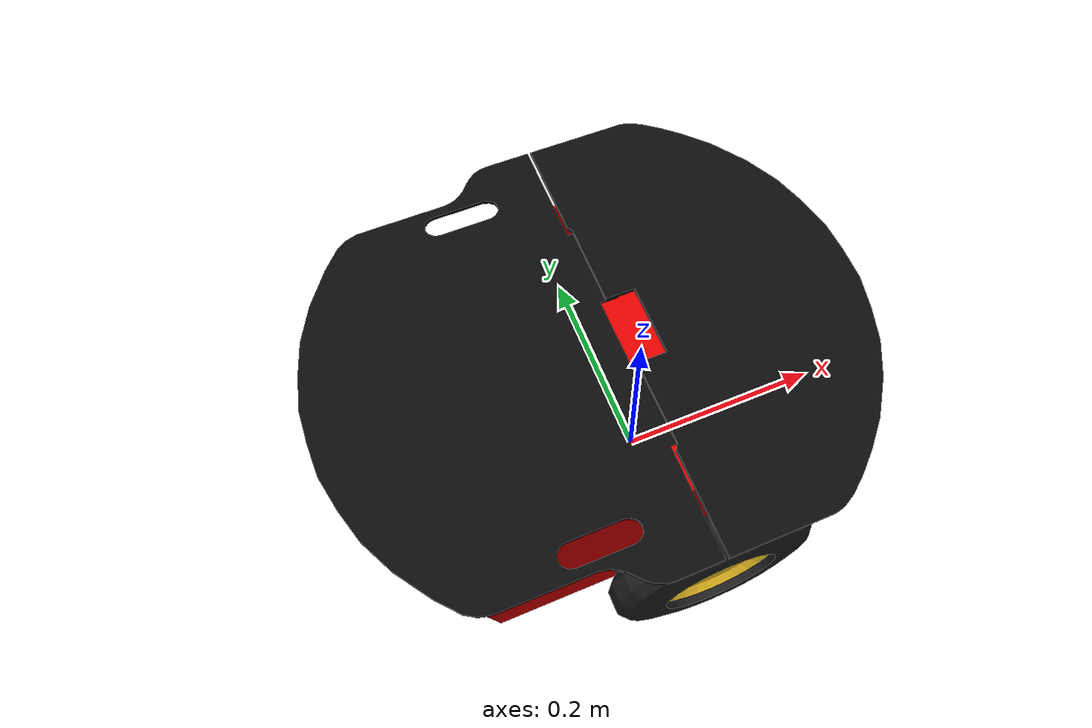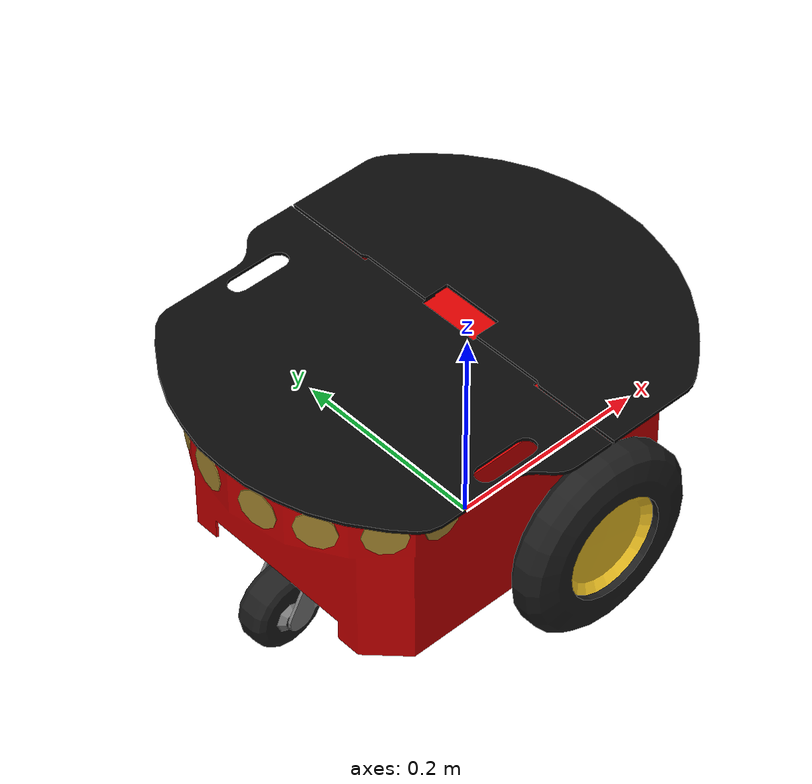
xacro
<?xml version="1.0"?>
<robot name="pioneer2dx" xmlns:xacro="http://ros.org/wiki/xacro">

  <xacro:property name="M_PI" value="3.14159265358979"/>
  <xacro:property name="laser_z" value="0.07"/>

  <xacro:include filename="$(find tuw_bringup)/config/robot_description/pioneer2dx/body.xacro"/>
</robot>

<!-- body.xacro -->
<robot xmlns:xacro="http://ros.org/wiki/xacro">

  <xacro:include filename="$(find tuw_bringup)/config/robot_description/pioneer2dx/wheel.xacro"/>

  <material name="ChassisRed"  ><color rgba="0.851 0.0 0.0 1.0"/></material>
  <material name="TopBlack"    ><color rgba="0.038 0.038 0.038 1.0"/></material>
  <material name="Swivel"      ><color rgba="0.5 0.5 0.5 1.0"/></material>
  <material name="WheelBlack"  ><color rgba="0.117 0.117 0.117 1.0"/></material>
  <material name="HubcapYellow"><color rgba="1.0 0.811 0.151 1.0"/></material>
  <material name="SonarYellow" ><color rgba="0.715 0.583 0.210 1.0"/></material>

  <link name="base_link">
    <inertial>
      <mass value="20.0"/>
      <origin xyz="-0.045 0 0.148"/>
      <inertia ixx="0.3338" ixy="0.0" ixz="0.0"
               iyy="0.4783" iyz="0.0"
               izz="0.3338"/>
    </inertial>
    <visual>
      <origin xyz="-0.045 0 0.148" rpy="0 0 0"/>
      <geometry>
        <mesh filename="package://tuw_bringup/config/robot_description/pioneer2dx/meshes/chassis.stl"/>
      </geometry>
      <material name="ChassisRed"/>
    </visual>
    <collision>
      <origin xyz="-0.045 0 0.148" rpy="0 0 0"/>
      <geometry>
        <box size="0.4 0.28 0.17"/>
      </geometry>
    </collision>
  </link>

  <link name="base_footprint"/>
  <joint name="base_footprint_joint" type="fixed">
    <origin xyz="0 0 0" rpy="0 0 0"/>
    <parent link="base_link"/>
    <child  link="base_footprint"/>
  </joint>

  <link name="top_plate">
    <inertial>
      <mass value="0.01"/>
      <origin xyz="0 0 0"/>
      <inertia ixx="1" ixy="0" ixz="0" iyy="1" iyz="0" izz="1"/>
    </inertial>
    <visual>
      <origin xyz="0 0 0" rpy="0 0 0"/>
      <geometry>
        <mesh filename="package://tuw_bringup/config/robot_description/pioneer2dx/meshes/top.stl"/>
      </geometry>
      <material name="TopBlack"/>
    </visual>
  </link>
  <joint name="base_top_joint" type="fixed">
    <origin xyz="-0.045 0 0.24" rpy="0 0 0"/>
    <parent link="base_link"/>
    <child  link="top_plate"/>
  </joint>

  <link name="swivel">
    <inertial>
      <mass value="0.1"/>
      <origin xyz="0 0 0"/>
      <inertia ixx="0.01" ixy="0" ixz="0" iyy="0.01" iyz="0" izz="0.01"/>
    </inertial>
    <visual>
      <origin xyz="0 0 0" rpy="0 0 0"/>
      <geometry>
        <mesh filename="package://tuw_bringup/config/robot_description/pioneer2dx/meshes/swivel.stl"/>
      </geometry>
      <material name="Swivel"/>
    </visual>
  </link>
  <joint name="base_swivel_joint" type="continuous">
    <origin xyz="-0.185 0 0.055" rpy="0 0 0"/>
    <axis xyz="0 0 1"/>
    <limit effort="100" velocity="100"/>
    <joint_properties damping="0.0" friction="0.0"/>
    <parent link="base_link"/>
    <child  link="swivel"/>
  </joint>

  <link name="center_wheel">
    <inertial>
      <mass value="0.1"/>
      <origin xyz="0 0 0"/>
      <inertia ixx="0.012411765597" ixy="0" ixz="0"
               iyy="0.015218160428" iyz="0"
               izz="0.011763977943"/>
    </inertial>
    <visual>
      <origin xyz="0 0 0" rpy="0 0 0"/>
      <geometry>
        <mesh filename="package://tuw_bringup/config/robot_description/pioneer2dx/meshes/center_wheel.stl"/>
      </geometry>
      <material name="WheelBlack"/>
    </visual>
    <collision>
      <origin xyz="0 0 0" rpy="${-M_PI/2} 0 0"/>
      <geometry>
        <cylinder radius="0.0375" length="0.0314"/>
      </geometry>
    </collision>
  </link>
  <joint name="swivel_hubcap_joint" type="continuous">
    <origin xyz="-0.026 0 -0.016" rpy="0 0 0"/>
    <axis xyz="0 1 0"/>
    <limit effort="100" velocity="100"/>
    <joint_properties damping="0.0" friction="0.0"/>
    <parent link="swivel"/>
    <child  link="center_wheel"/>
  </joint>

  <link name="center_hubcap">
    <inertial>
      <mass value="0.01"/>
      <origin xyz="0 0 0"/>
      <inertia ixx="0.012411765597" ixy="0" ixz="0"
               iyy="0.015218160428" iyz="0"
               izz="0.011763977943"/>
    </inertial>
    <visual>
      <origin xyz="0 0 0" rpy="0 0 0"/>
      <geometry>
        <mesh filename="package://tuw_bringup/config/robot_description/pioneer2dx/meshes/center_hubcap.stl"/>
      </geometry>
      <material name="Swivel"/>
    </visual>
  </link>
  <joint name="center_wheel_hub_joint" type="fixed">
    <origin xyz="-0.0035 0 -0.001" rpy="0 0 0"/>
    <parent link="center_wheel"/>
    <child  link="center_hubcap"/>
  </joint>

  <xacro:p2dx_wheel suffix="left"  parent="base_link" reflect="1"/>
  <xacro:p2dx_wheel suffix="right" parent="base_link" reflect="-1"/>

  <link name="front_sonar">
    <inertial>
      <mass value="0.0001"/>
      <origin xyz="0 0 0"/>
      <inertia ixx="1" ixy="0" ixz="0" iyy="1" iyz="0" izz="1"/>
    </inertial>
    <visual>
      <origin xyz="0 0 0" rpy="0 0 0"/>
      <geometry>
        <mesh filename="package://tuw_bringup/config/robot_description/pioneer2dx/meshes/front_sonar.stl"/>
      </geometry>
      <material name="SonarYellow"/>
    </visual>
  </link>
  <joint name="base_front_sonar_joint" type="fixed">
    <origin xyz="-0.198 0 0.208" rpy="0 0 0"/>
    <parent link="base_link"/>
    <child  link="front_sonar"/>
  </joint>

  <link name="back_sonar">
    <inertial>
      <mass value="0.0001"/>
      <origin xyz="0 0 0"/>
      <inertia ixx="1" ixy="0" ixz="0" iyy="1" iyz="0" izz="1"/>
    </inertial>
    <visual>
      <origin xyz="0 0 0" rpy="0 0 0"/>
      <geometry>
        <mesh filename="package://tuw_bringup/config/robot_description/pioneer2dx/meshes/back_sonar.stl"/>
      </geometry>
      <material name="SonarYellow"/>
    </visual>
  </link>
  <joint name="base_back_sonar_joint" type="fixed">
    <origin xyz="0.109 0 0.209" rpy="0 0 0"/>
    <parent link="base_link"/>
    <child  link="back_sonar"/>
  </joint>

  <link name="base_laser"/>
  <joint name="top_to_laser_joint" type="fixed">
    <origin xyz="0 0 ${laser_z}" rpy="0 0 ${M_PI}"/>
    <parent link="top_plate"/>
    <child  link="base_laser"/>
  </joint>

</robot>

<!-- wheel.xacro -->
<robot xmlns:xacro="http://ros.org/wiki/xacro">

  <xacro:macro name="p2dx_wheel" params="suffix parent reflect">
    <link name="p2dx_${suffix}_wheel">
      <inertial>
        <mass value="0.5"/>
        <origin xyz="0 0 0"/>
        <inertia ixx="0.012411765597" ixy="0" ixz="0"
                 iyy="0.015218160428" iyz="0"
                 izz="0.011763977943"/>
      </inertial>
      <visual>
        <origin xyz="0 0 0" rpy="0 0 0"/>
        <geometry>
          <mesh filename="package://tuw_bringup/config/robot_description/pioneer2dx/meshes/${suffix}_wheel.stl"/>
        </geometry>
        <material name="WheelBlack"/>
      </visual>
      <collision>
        <origin xyz="0 0 0" rpy="${-M_PI/2} 0 0"/>
        <geometry>
          <cylinder radius="0.09" length="0.04"/>
        </geometry>
      </collision>
    </link>

    <link name="p2dx_${suffix}_hubcap">
      <inertial>
        <mass value="0.01"/>
        <origin xyz="0 0 0"/>
        <inertia ixx="0.012411765597" ixy="0" ixz="0"
                 iyy="0.015218160428" iyz="0"
                 izz="0.011763977943"/>
      </inertial>
      <visual>
        <origin xyz="0 0 0" rpy="0 0 0"/>
        <geometry>
          <mesh filename="package://tuw_bringup/config/robot_description/pioneer2dx/meshes/${suffix}_hubcap.stl"/>
        </geometry>
        <material name="HubcapYellow"/>
      </visual>
    </link>

    <joint name="base_${suffix}_hubcap_joint" type="fixed">
      <origin xyz="0 0 0" rpy="0 0 0"/>
      <parent link="p2dx_${suffix}_wheel"/>
      <child  link="p2dx_${suffix}_hubcap"/>
    </joint>

    <joint name="base_${suffix}_wheel_joint" type="continuous">
      <axis xyz="0 1 0"/>
      <limit effort="100" velocity="100"/>
      <joint_properties damping="0.0" friction="0.0"/>
      <origin xyz="0 ${reflect*0.158} 0.091" rpy="0 0 0"/>
      <parent link="${parent}"/>
      <child  link="p2dx_${suffix}_wheel"/>
    </joint>
  </xacro:macro>

</robot>
